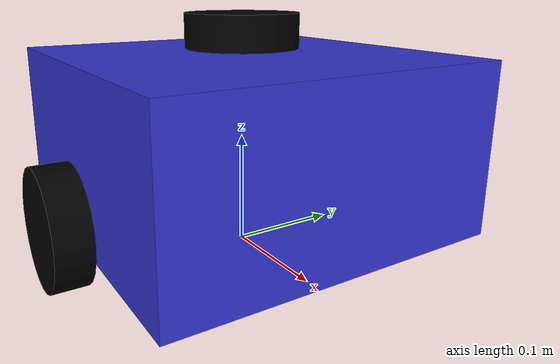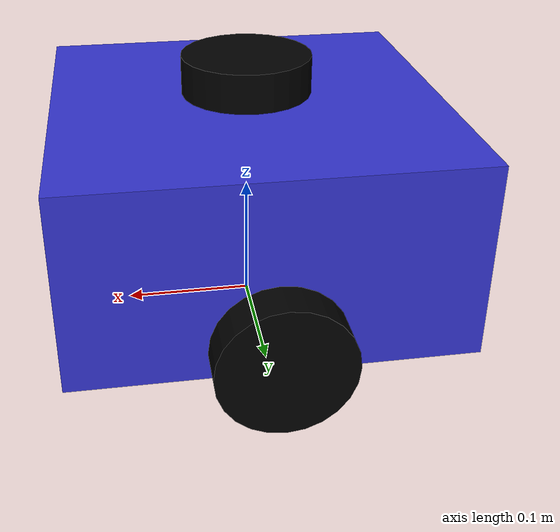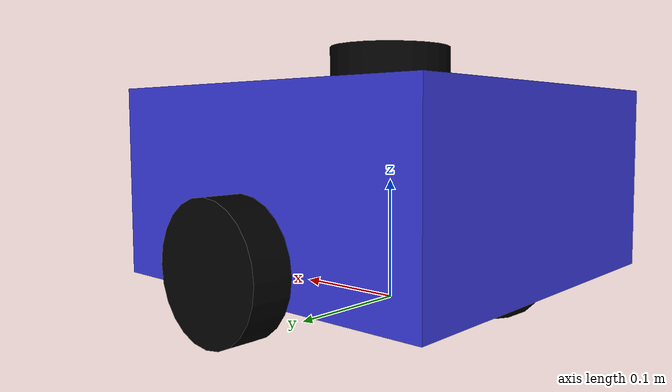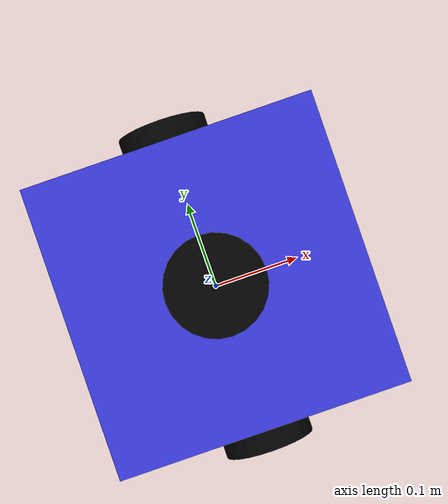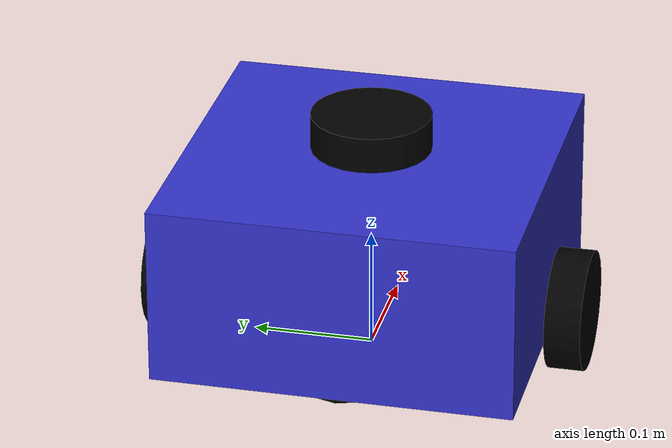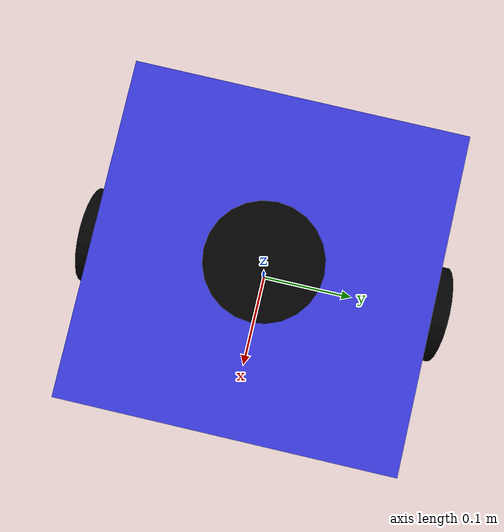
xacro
<?xml version="1.0" encoding="utf-8"?>
<robot name="diff_drive_robot" xmlns:xacro="http://www.ros.org/wiki/xacro">

<link name="base_footprint"/>

<link name="base_link">

<xacro:inertial_box mass="6.5" x="0.35" y="0.22" z="0.16">
<origin xyz="0 0 0.08" rpy="0 0 0"/>
</xacro:inertial_box>

<visual>
<origin xyz="0 0 0.05" rpy="0 0 0"/>
<geometry>
<box size="0.30 0.30 0.15"/>
</geometry>
<material name="blue">
<color rgba="0.2 0.2 0.8 1"/>
</material>
</visual>

<collision>
<origin xyz="0 0 0.05" rpy="0 0 0"/>
<geometry>
<box size="0.30 0.30 0.15"/>
</geometry>
</collision>

</link>

<joint name="base_joint" type="fixed">
    <origin xyz="0 0 0.05" rpy="0 0 0"/>
    <parent link="base_footprint"/>
    <child link="base_link"/>
</joint>

<link name="right_wheel_link">

<xacro:inertial_cylinder mass="0.5" length="0.02" radius="0.05">
<origin xyz="0 0 0" rpy="0 0 0"/>
</xacro:inertial_cylinder>

<visual>
<origin xyz="0 0 0" rpy="1.57 0 0"/>
<geometry>
    <cylinder radius="0.05" length="0.03"/>
</geometry>
<material name="black">
    <color rgba="0.0 0.0 0.0 1"/>
</material>
</visual>

<collision>
    <origin xyz="0 0 0" rpy="1.57 0 0"/>
    <geometry>
        <sphere radius="0.05"/>
    </geometry>
</collision>

</link>

<joint name="right_wheel_joint" type="continuous">
    <origin xyz="0 -0.17 0" rpy="0 0 0"/>
    <parent link="base_link"/>
    <child link="right_wheel_link"/>
    <axis xyz="0 1 0"/>
    <dynamics damping="0.6" friction="0.2"/>
</joint>

<link name="left_wheel_link">

<xacro:inertial_cylinder mass="0.5" length="0.02" radius="0.05">
<origin xyz="0 0 0" rpy="0 0 0"/>
</xacro:inertial_cylinder>

<visual>
<origin xyz="0 0 0" rpy="1.57 0 0"/>
<geometry>
    <cylinder radius="0.05" length="0.03"/>
</geometry>
<material name="black">
    <color rgba="0.0 0.0 0.0 1"/>
</material>
</visual>

<collision>
    <origin xyz="0 0 0" rpy="1.57 0 0"/>
    <geometry>
        <sphere radius="0.05"/>
    </geometry>
</collision>

</link>

<joint name="left_wheel_joint" type="continuous">
    <origin xyz="0 0.17 0" rpy="0 0 0"/>
    <parent link="base_link"/>
    <child link="left_wheel_link"/>
    <axis xyz="0 1 0"/>
    <dynamics damping="0.6" friction="0.2"/>
</joint>

<link name="front_caster_wheel_link">

<xacro:inertial_sphere mass="0.15" radius="0.05">
<origin xyz="0 0 0" rpy="0 0 0"/>
</xacro:inertial_sphere>

<visual>
<origin xyz="0 0 0" rpy="1.57 0 0"/>
<geometry>
    <sphere radius="0.0495" />
</geometry>
<material name="black">
    <color rgba="0.0 0.0 0.0 1"/>
</material>
</visual>

<collision>
<origin xyz="0 0 0" rpy="1.57 0 0"/>
<geometry>
    <sphere radius="0.0495" />
</geometry>
</collision>

</link>

<joint name="front_caster_wheel_joint" type="fixed">
<origin xyz="0.10 0 0" rpy="0 0 0"/>
<parent link="base_link"/>
<child link="front_caster_wheel_link"/>
</joint>

<link name="back_caster_wheel_link">

<xacro:inertial_sphere mass="0.15" radius="0.05">
<origin xyz="0 0 0" rpy="0 0 0"/>
</xacro:inertial_sphere>

<visual>
<origin xyz="0 0 0" rpy="1.57 0 0"/>
<geometry>
    <sphere radius="0.0495" />
</geometry>
<material name="black">
    <color rgba="0.0 0.0 0.0 1"/>
</material>
</visual>

<collision>
<origin xyz="0 0 0" rpy="1.57 0 0"/>
<geometry>
    <sphere radius="0.0495" />
</geometry>
</collision>

</link>

<joint name="back_caster_wheel_joint" type="fixed">
<origin xyz="-0.10 0 0" rpy="0 0 0"/>
<parent link="base_link"/>
<child link="back_caster_wheel_link"/>
</joint>

<link name="imu_link">
    <xacro:inertial_box mass="0.001" x="0.04" y="0.04" z="0.005">
    <origin xyz="0 0 0" rpy="0 0 0"/>
    </xacro:inertial_box>

    <visual>
        <origin xyz="0 0 0" rpy="0 0 0"/>

        <geometry>
            <box size="0.04 0.04 0.005"/>
        </geometry>

        <material name="red">
            <color rgba="0.8 0.1 0.1 1"/>
        </material>

    </visual>

    <collision>
        <origin xyz="0 0 0" rpy="0 0 0"/>

        <geometry>
            <box size="0.04 0.04 0.005"/>
        </geometry>

    </collision>
</link>

<joint name="imu_joint" type="fixed">
<origin xyz="0 0 0.10" rpy="0 0 0"/>
<parent link="base_link" />
<child link="imu_link" />
<axis xyz="0 0 0" />
</joint>

<link name="laser_link">

<xacro:inertial_cylinder mass="0.005" length="0.02" radius="0.05">
<origin xyz="0 0 0" rpy="0 0 0"/>
</xacro:inertial_cylinder>

<visual>
<origin xyz="0 0 0" rpy="0 0 0"/>
<geometry>
    <cylinder radius="0.05" length="0.03"/>
</geometry>
<material name="black">
    <color rgba="0.0 0.0 0.0 1"/>
</material>
</visual>

<collision>
<origin xyz="0 0 0" rpy="0 0 0"/>
<geometry>
    <cylinder radius="0.05" length="0.03"/>
</geometry>
</collision>

</link>

<joint name="laser_joint" type="fixed">
<origin xyz="0 0 0.145" rpy="0 0 0"/>
<parent link="base_link"/>
<child link="laser_link"/>
</joint>

</robot>
